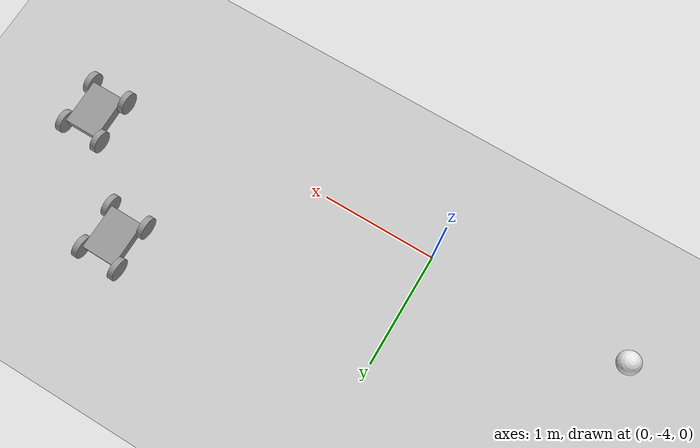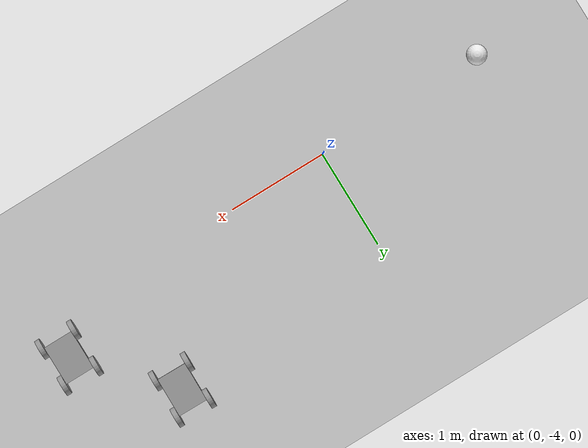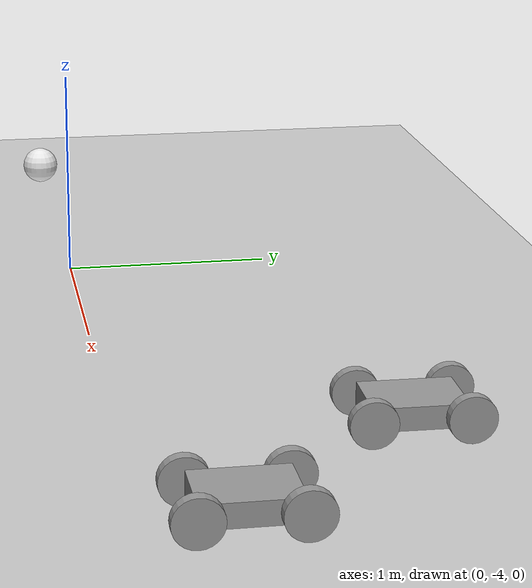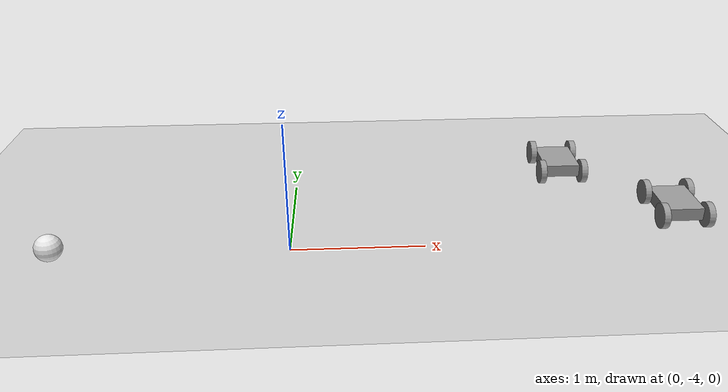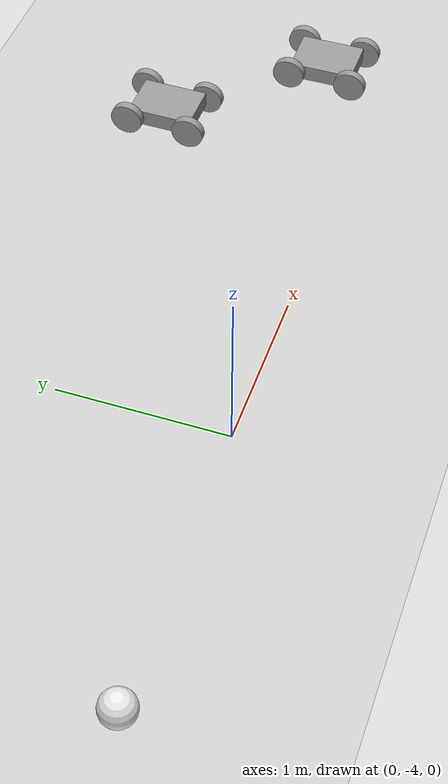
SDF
<sdf version="1.6">
 <world name="default">
  <model name="ground_plane">
   <static>1</static>
   <link name="link">
    <collision name="collision">
     <geometry><plane><normal>0 0 1</normal><size>100 100</size></plane></geometry>
     <surface>
      <contact><collide_bitmask>65535</collide_bitmask></contact>
      <friction><ode><mu>0.1</mu><mu2>0.1</mu2></ode></friction>
     </surface>
    </collision>
    <visual name="visual">
     <cast_shadows>0</cast_shadows>
     <geometry><plane><normal>0 0 1</normal><size>100 100</size></plane></geometry>
     <material>
      <script><uri>file://media/materials/scripts/gazebo.material</uri><name>Gazebo/Grey</name></script>
     </material>
    </visual>
   </link>
  </model>
  <model name="newmodel">
   <link name="link_0">
    <pose>2.27654 -2.81024 0.1 0 -0 0</pose>
    <inertial>
     <mass>1</mass>
     <inertia>
      <ixx>0.166667</ixx>
      <ixy>0</ixy>
      <ixz>0</ixz>
      <iyy>0.166667</iyy>
      <iyz>0</iyz>
      <izz>0.166667</izz>
     </inertia>
    </inertial>
    <visual name="visual">
     <geometry><box><size>0.3 0.4 0.1</size></box></geometry>
     <material>
      <lighting>1</lighting>
      <script><uri>file://media/materials/scripts/gazebo.material</uri><name>Gazebo/Grey</name></script>
      <shader type="pixel"><normal_map>__default__</normal_map></shader>
      <ambient>0.3 0.3 0.3 1</ambient>
      <diffuse>0.7 0.7 0.7 1</diffuse>
      <specular>0.01 0.01 0.01 1</specular>
      <emissive>0 0 0 1</emissive>
     </material>
    </visual>
    <collision name="collision">
     <geometry><box><size>0.3 0.4 0.1</size></box></geometry>
     <surface>
      <friction>
       <ode><mu>1</mu><mu2>1</mu2><fdir1>0 0 0</fdir1><slip1>0</slip1><slip2>0</slip2></ode>
       <torsional>
        <coefficient>1</coefficient>
        <patch_radius>0</patch_radius>
        <surface_radius>0</surface_radius>
        <use_patch_radius>1</use_patch_radius>
        <ode><slip>0</slip></ode>
       </torsional>
      </friction>
      <bounce><restitution_coefficient>0</restitution_coefficient><threshold>1e+06</threshold></bounce>
      <contact>
       <collide_without_contact>0</collide_without_contact>
       <collide_without_contact_bitmask>1</collide_without_contact_bitmask>
       <collide_bitmask>1</collide_bitmask>
       <ode>
        <soft_cfm>0</soft_cfm>
        <soft_erp>0.2</soft_erp>
        <kp>1e+13</kp>
        <kd>1</kd>
        <max_vel>0.01</max_vel>
        <min_depth>0</min_depth>
       </ode>
       <bullet>
        <split_impulse>1</split_impulse>
        <split_impulse_penetration_threshold>-0.01</split_impulse_penetration_threshold>
        <soft_cfm>0</soft_cfm>
        <soft_erp>0.2</soft_erp>
        <kp>1e+13</kp>
        <kd>1</kd>
       </bullet>
      </contact>
     </surface>
    </collision>
   </link>
   <link name="link_1">
    <pose>2.45154 -2.61024 0.1 -3.14159 1.57059 -3.14159</pose>
    <inertial>
     <mass>1</mass>
     <inertia><ixx>0.145833</ixx><ixy>0</ixy><ixz>0</ixz><iyy>0.145833</iyy><iyz>0</iyz><izz>0.125</izz></inertia>
    </inertial>
    <visual name="visual">
     <geometry><cylinder><radius>0.1</radius><length>0.05</length></cylinder></geometry>
     <material>
      <lighting>1</lighting>
      <script><uri>file://media/materials/scripts/gazebo.material</uri><name>Gazebo/Grey</name></script>
      <shader type="pixel"><normal_map>__default__</normal_map></shader>
      <ambient>0.3 0.3 0.3 1</ambient>
      <diffuse>0.7 0.7 0.7 1</diffuse>
      <specular>0.01 0.01 0.01 1</specular>
      <emissive>0 0 0 1</emissive>
     </material>
    </visual>
    <collision name="collision">
     <geometry><cylinder><radius>0.1</radius><length>0.05</length></cylinder></geometry>
     <surface>
      <friction>
       <ode><mu>1</mu><mu2>1</mu2><fdir1>0 0 0</fdir1><slip1>0</slip1><slip2>0</slip2></ode>
       <torsional>
        <coefficient>1</coefficient>
        <patch_radius>0</patch_radius>
        <surface_radius>0</surface_radius>
        <use_patch_radius>1</use_patch_radius>
        <ode><slip>0</slip></ode>
       </torsional>
      </friction>
      <bounce><restitution_coefficient>0</restitution_coefficient><threshold>1e+06</threshold></bounce>
      <contact>
       <collide_without_contact>0</collide_without_contact>
       <collide_without_contact_bitmask>1</collide_without_contact_bitmask>
       <collide_bitmask>1</collide_bitmask>
       <ode>
        <soft_cfm>0</soft_cfm>
        <soft_erp>0.2</soft_erp>
        <kp>1e+13</kp>
        <kd>1</kd>
        <max_vel>0.01</max_vel>
        <min_depth>0</min_depth>
       </ode>
       <bullet>
        <split_impulse>1</split_impulse>
        <split_impulse_penetration_threshold>-0.01</split_impulse_penetration_threshold>
        <soft_cfm>0</soft_cfm>
        <soft_erp>0.2</soft_erp>
        <kp>1e+13</kp>
        <kd>1</kd>
       </bullet>
      </contact>
     </surface>
    </collision>
   </link>
   <link name="link_1_clone">
    <pose>2.45154 -3.01024 0.1 -3.14159 1.57059 -3.14159</pose>
    <inertial>
     <mass>1</mass>
     <inertia><ixx>0.145833</ixx><ixy>0</ixy><ixz>0</ixz><iyy>0.145833</iyy><iyz>0</iyz><izz>0.125</izz></inertia>
    </inertial>
    <visual name="visual">
     <geometry><cylinder><radius>0.1</radius><length>0.05</length></cylinder></geometry>
     <material>
      <lighting>1</lighting>
      <script><uri>file://media/materials/scripts/gazebo.material</uri><name>Gazebo/Grey</name></script>
      <shader type="pixel"><normal_map>__default__</normal_map></shader>
      <ambient>0.3 0.3 0.3 1</ambient>
      <diffuse>0.7 0.7 0.7 1</diffuse>
      <specular>0.01 0.01 0.01 1</specular>
      <emissive>0 0 0 1</emissive>
     </material>
    </visual>
    <collision name="collision">
     <geometry><cylinder><radius>0.1</radius><length>0.05</length></cylinder></geometry>
     <surface>
      <friction>
       <ode><mu>0.1</mu><mu2>0.1</mu2><fdir1>0 0 0</fdir1><slip1>0</slip1><slip2>0</slip2></ode>
       <torsional>
        <coefficient>1</coefficient>
        <patch_radius>0</patch_radius>
        <surface_radius>0</surface_radius>
        <use_patch_radius>1</use_patch_radius>
        <ode><slip>0</slip></ode>
       </torsional>
      </friction>
      <bounce><restitution_coefficient>0</restitution_coefficient><threshold>1e+06</threshold></bounce>
      <contact>
       <collide_without_contact>0</collide_without_contact>
       <collide_without_contact_bitmask>1</collide_without_contact_bitmask>
       <collide_bitmask>1</collide_bitmask>
       <ode>
        <soft_cfm>0</soft_cfm>
        <soft_erp>0.2</soft_erp>
        <kp>1e+13</kp>
        <kd>1</kd>
        <max_vel>0.01</max_vel>
        <min_depth>0</min_depth>
       </ode>
       <bullet>
        <split_impulse>1</split_impulse>
        <split_impulse_penetration_threshold>-0.01</split_impulse_penetration_threshold>
        <soft_cfm>0</soft_cfm>
        <soft_erp>0.2</soft_erp>
        <kp>1e+13</kp>
        <kd>1</kd>
       </bullet>
      </contact>
     </surface>
    </collision>
   </link>
   <link name="link_1_clone_0">
    <pose>2.10154 -2.61024 0.1 -3.14159 1.57059 -3.14159</pose>
    <inertial>
     <mass>1</mass>
     <inertia><ixx>0.145833</ixx><ixy>0</ixy><ixz>0</ixz><iyy>0.145833</iyy><iyz>0</iyz><izz>0.125</izz></inertia>
    </inertial>
    <visual name="visual">
     <geometry><cylinder><radius>0.1</radius><length>0.05</length></cylinder></geometry>
     <material>
      <lighting>1</lighting>
      <script><uri>file://media/materials/scripts/gazebo.material</uri><name>Gazebo/Grey</name></script>
      <shader type="pixel"><normal_map>__default__</normal_map></shader>
      <ambient>0.3 0.3 0.3 1</ambient>
      <diffuse>0.7 0.7 0.7 1</diffuse>
      <specular>0.01 0.01 0.01 1</specular>
      <emissive>0 0 0 1</emissive>
     </material>
    </visual>
    <collision name="collision">
     <geometry><cylinder><radius>0.1</radius><length>0.05</length></cylinder></geometry>
     <surface>
      <friction>
       <ode><mu>0.1</mu><mu2>0.1</mu2><fdir1>0 0 0</fdir1><slip1>0</slip1><slip2>0</slip2></ode>
       <torsional>
        <coefficient>1</coefficient>
        <patch_radius>0</patch_radius>
        <surface_radius>0</surface_radius>
        <use_patch_radius>1</use_patch_radius>
        <ode><slip>0</slip></ode>
       </torsional>
      </friction>
      <bounce><restitution_coefficient>0</restitution_coefficient><threshold>1e+06</threshold></bounce>
      <contact>
       <collide_without_contact>0</collide_without_contact>
       <collide_without_contact_bitmask>1</collide_without_contact_bitmask>
       <collide_bitmask>1</collide_bitmask>
       <ode>
        <soft_cfm>0</soft_cfm>
        <soft_erp>0.2</soft_erp>
        <kp>1e+13</kp>
        <kd>1</kd>
        <max_vel>0.01</max_vel>
        <min_depth>0</min_depth>
       </ode>
       <bullet>
        <split_impulse>1</split_impulse>
        <split_impulse_penetration_threshold>-0.01</split_impulse_penetration_threshold>
        <soft_cfm>0</soft_cfm>
        <soft_erp>0.2</soft_erp>
        <kp>1e+13</kp>
        <kd>1</kd>
       </bullet>
      </contact>
     </surface>
    </collision>
   </link>
   <link name="link_1_clone_1">
    <pose>2.10154 -3.01024 0.1 -3.14159 1.57059 -3.14159</pose>
    <inertial>
     <mass>1</mass>
     <inertia><ixx>0.145833</ixx><ixy>0</ixy><ixz>0</ixz><iyy>0.145833</iyy><iyz>0</iyz><izz>0.125</izz></inertia>
    </inertial>
    <visual name="visual">
     <geometry><cylinder><radius>0.1</radius><length>0.05</length></cylinder></geometry>
     <material>
      <lighting>1</lighting>
      <script><uri>file://media/materials/scripts/gazebo.material</uri><name>Gazebo/Grey</name></script>
      <shader type="pixel"><normal_map>__default__</normal_map></shader>
      <ambient>0.3 0.3 0.3 1</ambient>
      <diffuse>0.7 0.7 0.7 1</diffuse>
      <specular>0.01 0.01 0.01 1</specular>
      <emissive>0 0 0 1</emissive>
     </material>
    </visual>
    <collision name="collision">
     <geometry><cylinder><radius>0.1</radius><length>0.05</length></cylinder></geometry>
     <surface>
      <friction>
       <ode><mu>0.1</mu><mu2>0.1</mu2><fdir1>0 0 0</fdir1><slip1>0</slip1><slip2>0</slip2></ode>
       <torsional>
        <coefficient>1</coefficient>
        <patch_radius>0</patch_radius>
        <surface_radius>0</surface_radius>
        <use_patch_radius>1</use_patch_radius>
        <ode><slip>0</slip></ode>
       </torsional>
      </friction>
      <bounce><restitution_coefficient>0</restitution_coefficient><threshold>1e+06</threshold></bounce>
      <contact>
       <collide_without_contact>0</collide_without_contact>
       <collide_without_contact_bitmask>1</collide_without_contact_bitmask>
       <collide_bitmask>1</collide_bitmask>
       <ode>
        <soft_cfm>0</soft_cfm>
        <soft_erp>0.2</soft_erp>
        <kp>1e+13</kp>
        <kd>1</kd>
        <max_vel>0.01</max_vel>
        <min_depth>0</min_depth>
       </ode>
       <bullet>
        <split_impulse>1</split_impulse>
        <split_impulse_penetration_threshold>-0.01</split_impulse_penetration_threshold>
        <soft_cfm>0</soft_cfm>
        <soft_erp>0.2</soft_erp>
        <kp>1e+13</kp>
        <kd>1</kd>
       </bullet>
      </contact>
     </surface>
    </collision>
   </link>
   <joint name="link_0_JOINT_0" type="revolute">
    <parent>link_0</parent>
    <child>link_1</child>
    <axis>
     <xyz>1 0 0</xyz>
     <use_parent_model_frame>0</use_parent_model_frame>
     <limit>
      <lower>-1.79769e+308</lower>
      <upper>1.79769e+308</upper>
      <effort>-1</effort>
      <velocity>-1</velocity>
     </limit>
     <dynamics>
      <spring_reference>0</spring_reference>
      <spring_stiffness>0</spring_stiffness>
      <damping>0</damping>
      <friction>0</friction>
     </dynamics>
    </axis>
    <physics>
     <ode><limit><cfm>0</cfm><erp>0.2</erp></limit><suspension><cfm>0</cfm><erp>0.2</erp></suspension></ode>
    </physics>
   </joint>
   <joint name="link_0_JOINT_1" type="revolute">
    <parent>link_0</parent>
    <child>link_1_clone</child>
    <axis>
     <xyz>1 0 0</xyz>
     <use_parent_model_frame>0</use_parent_model_frame>
     <limit>
      <lower>-1.79769e+308</lower>
      <upper>1.79769e+308</upper>
      <effort>-1</effort>
      <velocity>-1</velocity>
     </limit>
     <dynamics>
      <spring_reference>0</spring_reference>
      <spring_stiffness>0</spring_stiffness>
      <damping>0</damping>
     </dynamics>
    </axis>
    <physics>
     <ode><limit><cfm>0</cfm><erp>0.2</erp></limit><suspension><cfm>0</cfm><erp>0.2</erp></suspension></ode>
    </physics>
   </joint>
   <joint name="link_0_JOINT_2" type="revolute">
    <parent>link_0</parent>
    <child>link_1_clone_0</child>
    <axis>
     <xyz>1 0 0</xyz>
     <use_parent_model_frame>0</use_parent_model_frame>
     <limit>
      <lower>-1.79769e+308</lower>
      <upper>1.79769e+308</upper>
      <effort>-1</effort>
      <velocity>-1</velocity>
     </limit>
     <dynamics>
      <spring_reference>0</spring_reference>
      <spring_stiffness>0</spring_stiffness>
      <damping>0</damping>
     </dynamics>
    </axis>
    <physics>
     <ode><limit><cfm>0</cfm><erp>0.2</erp></limit><suspension><cfm>0</cfm><erp>0.2</erp></suspension></ode>
    </physics>
   </joint>
   <joint name="link_0_JOINT_3" type="revolute">
    <parent>link_0</parent>
    <child>link_1_clone_1</child>
    <axis>
     <xyz>1 0 0</xyz>
     <use_parent_model_frame>0</use_parent_model_frame>
     <limit>
      <lower>-1.79769e+308</lower>
      <upper>1.79769e+308</upper>
      <effort>-1</effort>
      <velocity>-1</velocity>
     </limit>
     <dynamics>
      <spring_reference>0</spring_reference>
      <spring_stiffness>0</spring_stiffness>
      <damping>0</damping>
     </dynamics>
    </axis>
    <physics>
     <ode><limit><cfm>0</cfm><erp>0.2</erp></limit><suspension><cfm>0</cfm><erp>0.2</erp></suspension></ode>
    </physics>
   </joint>
   <static>0</static>
   <pose>0.050926 0.033382 6e-06 -3e-06 5e-06 -0.014128</pose>
  </model>
  <model name="newmodel_0">
   <link name="link_0">
    <pose>2.27654 -2.81024 0.1 0 -0 0</pose>
    <inertial>
     <mass>1</mass>
     <inertia>
      <ixx>0.166667</ixx>
      <ixy>0</ixy>
      <ixz>0</ixz>
      <iyy>0.166667</iyy>
      <iyz>0</iyz>
      <izz>0.166667</izz>
     </inertia>
    </inertial>
    <visual name="visual">
     <geometry><box><size>0.3 0.4 0.1</size></box></geometry>
     <material>
      <lighting>1</lighting>
      <script><uri>file://media/materials/scripts/gazebo.material</uri><name>Gazebo/Grey</name></script>
      <shader type="pixel"><normal_map>__default__</normal_map></shader>
      <ambient>0.3 0.3 0.3 1</ambient>
      <diffuse>0.7 0.7 0.7 1</diffuse>
      <specular>0.01 0.01 0.01 1</specular>
      <emissive>0 0 0 1</emissive>
     </material>
    </visual>
    <collision name="collision">
     <geometry><box><size>0.3 0.4 0.1</size></box></geometry>
     <surface>
      <friction>
       <ode><mu>0.1</mu><mu2>0.1</mu2><fdir1>0 0 0</fdir1><slip1>0</slip1><slip2>0</slip2></ode>
       <torsional>
        <coefficient>1</coefficient>
        <patch_radius>0</patch_radius>
        <surface_radius>0</surface_radius>
        <use_patch_radius>1</use_patch_radius>
        <ode><slip>0</slip></ode>
       </torsional>
      </friction>
      <bounce><restitution_coefficient>0</restitution_coefficient><threshold>1e+06</threshold></bounce>
      <contact>
       <collide_without_contact>0</collide_without_contact>
       <collide_without_contact_bitmask>1</collide_without_contact_bitmask>
       <collide_bitmask>1</collide_bitmask>
       <ode>
        <soft_cfm>0</soft_cfm>
        <soft_erp>0.2</soft_erp>
        <kp>1e+13</kp>
        <kd>1</kd>
        <max_vel>0.01</max_vel>
        <min_depth>0</min_depth>
       </ode>
       <bullet>
        <split_impulse>1</split_impulse>
        <split_impulse_penetration_threshold>-0.01</split_impulse_penetration_threshold>
        <soft_cfm>0</soft_cfm>
        <soft_erp>0.2</soft_erp>
        <kp>1e+13</kp>
        <kd>1</kd>
       </bullet>
      </contact>
     </surface>
    </collision>
   </link>
   <link name="link_1">
    <pose>2.45154 -2.61024 0.1 -3.14159 1.57059 -3.14159</pose>
    <inertial>
     <mass>1</mass>
     <inertia><ixx>0.145833</ixx><ixy>0</ixy><ixz>0</ixz><iyy>0.145833</iyy><iyz>0</iyz><izz>0.125</izz></inertia>
    </inertial>
    <visual name="visual">
     <geometry><cylinder><radius>0.1</radius><length>0.05</length></cylinder></geometry>
     <material>
      <lighting>1</lighting>
      <script><uri>file://media/materials/scripts/gazebo.material</uri><name>Gazebo/Grey</name></script>
      <shader type="pixel"><normal_map>__default__</normal_map></shader>
      <ambient>0.3 0.3 0.3 1</ambient>
      <diffuse>0.7 0.7 0.7 1</diffuse>
      <specular>0.01 0.01 0.01 1</specular>
      <emissive>0 0 0 1</emissive>
     </material>
    </visual>
    <collision name="collision">
     <geometry><cylinder><radius>0.1</radius><length>0.05</length></cylinder></geometry>
     <surface>
      <friction>
       <ode><mu>0.1</mu><mu2>0.1</mu2><fdir1>0 0 0</fdir1><slip1>0</slip1><slip2>0</slip2></ode>
       <torsional>
        <coefficient>1</coefficient>
        <patch_radius>0</patch_radius>
        <surface_radius>0</surface_radius>
        <use_patch_radius>1</use_patch_radius>
        <ode><slip>0</slip></ode>
       </torsional>
      </friction>
      <bounce><restitution_coefficient>0</restitution_coefficient><threshold>1e+06</threshold></bounce>
      <contact>
       <collide_without_contact>0</collide_without_contact>
       <collide_without_contact_bitmask>1</collide_without_contact_bitmask>
       <collide_bitmask>1</collide_bitmask>
       <ode>
        <soft_cfm>0</soft_cfm>
        <soft_erp>0.2</soft_erp>
        <kp>1e+13</kp>
        <kd>1</kd>
        <max_vel>0.01</max_vel>
        <min_depth>0</min_depth>
       </ode>
       <bullet>
        <split_impulse>1</split_impulse>
        <split_impulse_penetration_threshold>-0.01</split_impulse_penetration_threshold>
        <soft_cfm>0</soft_cfm>
        <soft_erp>0.2</soft_erp>
        <kp>1e+13</kp>
        <kd>1</kd>
       </bullet>
      </contact>
     </surface>
    </collision>
   </link>
   <link name="link_1_clone">
    <pose>2.45154 -3.01024 0.1 -3.14159 1.57059 -3.14159</pose>
    <inertial>
     <mass>1</mass>
     <inertia><ixx>0.145833</ixx><ixy>0</ixy><ixz>0</ixz><iyy>0.145833</iyy><iyz>0</iyz><izz>0.125</izz></inertia>
    </inertial>
    <visual name="visual">
     <geometry><cylinder><radius>0.1</radius><length>0.05</length></cylinder></geometry>
     <material>
      <lighting>1</lighting>
      <script><uri>file://media/materials/scripts/gazebo.material</uri><name>Gazebo/Grey</name></script>
      <shader type="pixel"><normal_map>__default__</normal_map></shader>
      <ambient>0.3 0.3 0.3 1</ambient>
      <diffuse>0.7 0.7 0.7 1</diffuse>
      <specular>0.01 0.01 0.01 1</specular>
      <emissive>0 0 0 1</emissive>
     </material>
    </visual>
    <collision name="collision">
     <geometry><cylinder><radius>0.1</radius><length>0.05</length></cylinder></geometry>
     <surface>
      <friction>
       <ode><mu>0.1</mu><mu2>0.1</mu2><fdir1>0 0 0</fdir1><slip1>0</slip1><slip2>0</slip2></ode>
       <torsional>
        <coefficient>1</coefficient>
        <patch_radius>0</patch_radius>
        <surface_radius>0</surface_radius>
        <use_patch_radius>1</use_patch_radius>
        <ode><slip>0</slip></ode>
       </torsional>
      </friction>
      <bounce><restitution_coefficient>0</restitution_coefficient><threshold>1e+06</threshold></bounce>
      <contact>
       <collide_without_contact>0</collide_without_contact>
       <collide_without_contact_bitmask>1</collide_without_contact_bitmask>
       <collide_bitmask>1</collide_bitmask>
       <ode>
        <soft_cfm>0</soft_cfm>
        <soft_erp>0.2</soft_erp>
        <kp>1e+13</kp>
        <kd>1</kd>
        <max_vel>0.01</max_vel>
        <min_depth>0</min_depth>
       </ode>
       <bullet>
        <split_impulse>1</split_impulse>
        <split_impulse_penetration_threshold>-0.01</split_impulse_penetration_threshold>
        <soft_cfm>0</soft_cfm>
        <soft_erp>0.2</soft_erp>
        <kp>1e+13</kp>
        <kd>1</kd>
       </bullet>
      </contact>
     </surface>
    </collision>
   </link>
   <link name="link_1_clone_0">
    <pose>2.10154 -2.61024 0.1 -3.14159 1.57059 -3.14159</pose>
    <inertial>
     <mass>1</mass>
     <inertia><ixx>0.145833</ixx><ixy>0</ixy><ixz>0</ixz><iyy>0.145833</iyy><iyz>0</iyz><izz>0.125</izz></inertia>
    </inertial>
    <visual name="visual">
     <geometry><cylinder><radius>0.1</radius><length>0.05</length></cylinder></geometry>
     <material>
      <lighting>1</lighting>
      <script><uri>file://media/materials/scripts/gazebo.material</uri><name>Gazebo/Grey</name></script>
      <shader type="pixel"><normal_map>__default__</normal_map></shader>
      <ambient>0.3 0.3 0.3 1</ambient>
      <diffuse>0.7 0.7 0.7 1</diffuse>
      <specular>0.01 0.01 0.01 1</specular>
      <emissive>0 0 0 1</emissive>
     </material>
    </visual>
    <collision name="collision">
     <geometry><cylinder><radius>0.1</radius><length>0.05</length></cylinder></geometry>
     <surface>
      <friction>
       <ode><mu>0.1</mu><mu2>0.1</mu2><fdir1>0 0 0</fdir1><slip1>0</slip1><slip2>0</slip2></ode>
       <torsional>
        <coefficient>1</coefficient>
        <patch_radius>0</patch_radius>
        <surface_radius>0</surface_radius>
        <use_patch_radius>1</use_patch_radius>
        <ode><slip>0</slip></ode>
       </torsional>
      </friction>
      <bounce><restitution_coefficient>0</restitution_coefficient><threshold>1e+06</threshold></bounce>
      <contact>
       <collide_without_contact>0</collide_without_contact>
       <collide_without_contact_bitmask>1</collide_without_contact_bitmask>
       <collide_bitmask>1</collide_bitmask>
       <ode>
        <soft_cfm>0</soft_cfm>
        <soft_erp>0.2</soft_erp>
        <kp>1e+13</kp>
        <kd>1</kd>
        <max_vel>0.01</max_vel>
        <min_depth>0</min_depth>
       </ode>
       <bullet>
        <split_impulse>1</split_impulse>
        <split_impulse_penetration_threshold>-0.01</split_impulse_penetration_threshold>
        <soft_cfm>0</soft_cfm>
        <soft_erp>0.2</soft_erp>
        <kp>1e+13</kp>
        <kd>1</kd>
       </bullet>
      </contact>
     </surface>
    </collision>
   </link>
   <link name="link_1_clone_1">
    <pose>2.10154 -3.01024 0.1 -3.14159 1.57059 -3.14159</pose>
    <inertial>
     <mass>1</mass>
     <inertia><ixx>0.145833</ixx><ixy>0</ixy><ixz>0</ixz><iyy>0.145833</iyy><iyz>0</iyz><izz>0.125</izz></inertia>
    </inertial>
    <visual name="visual">
     <geometry><cylinder><radius>0.1</radius><length>0.05</length></cylinder></geometry>
     <material>
      <lighting>1</lighting>
      <script><uri>file://media/materials/scripts/gazebo.material</uri><name>Gazebo/Grey</name></script>
      <shader type="pixel"><normal_map>__default__</normal_map></shader>
      <ambient>0.3 0.3 0.3 1</ambient>
      <diffuse>0.7 0.7 0.7 1</diffuse>
      <specular>0.01 0.01 0.01 1</specular>
      <emissive>0 0 0 1</emissive>
     </material>
    </visual>
    <collision name="collision">
     <geometry><cylinder><radius>0.1</radius><length>0.05</length></cylinder></geometry>
     <surface>
      <friction>
       <ode><mu>0.1</mu><mu2>0.1</mu2><fdir1>0 0 0</fdir1><slip1>0</slip1><slip2>0</slip2></ode>
       <torsional>
        <coefficient>1</coefficient>
        <patch_radius>0</patch_radius>
        <surface_radius>0</surface_radius>
        <use_patch_radius>1</use_patch_radius>
        <ode><slip>0</slip></ode>
       </torsional>
      </friction>
      <bounce><restitution_coefficient>0</restitution_coefficient><threshold>1e+06</threshold></bounce>
      <contact>
       <collide_without_contact>0</collide_without_contact>
       <collide_without_contact_bitmask>1</collide_without_contact_bitmask>
       <collide_bitmask>1</collide_bitmask>
       <ode>
        <soft_cfm>0</soft_cfm>
        <soft_erp>0.2</soft_erp>
        <kp>1e+13</kp>
        <kd>1</kd>
        <max_vel>0.01</max_vel>
        <min_depth>0</min_depth>
       </ode>
       <bullet>
        <split_impulse>1</split_impulse>
        <split_impulse_penetration_threshold>-0.01</split_impulse_penetration_threshold>
        <soft_cfm>0</soft_cfm>
        <soft_erp>0.2</soft_erp>
        <kp>1e+13</kp>
        <kd>1</kd>
       </bullet>
      </contact>
     </surface>
    </collision>
   </link>
   <joint name="link_0_JOINT_0" type="revolute">
    <parent>link_0</parent>
    <child>link_1</child>
    <axis>
     <xyz>1 0 0</xyz>
     <use_parent_model_frame>0</use_parent_model_frame>
     <limit>
      <lower>-1.79769e+308</lower>
      <upper>1.79769e+308</upper>
      <effort>-1</effort>
      <velocity>-1</velocity>
     </limit>
     <dynamics>
      <spring_reference>0</spring_reference>
      <spring_stiffness>0</spring_stiffness>
      <damping>0</damping>
      <friction>0</friction>
     </dynamics>
    </axis>
    <physics>
     <ode><limit><cfm>0</cfm><erp>0.2</erp></limit><suspension><cfm>0</cfm><erp>0.2</erp></suspension></ode>
    </physics>
   </joint>
   <joint name="link_0_JOINT_1" type="revolute">
    <parent>link_0</parent>
    <child>link_1_clone</child>
    <axis>
     <xyz>1 0 0</xyz>
     <use_parent_model_frame>0</use_parent_model_frame>
     <limit>
      <lower>-1.79769e+308</lower>
      <upper>1.79769e+308</upper>
      <effort>-1</effort>
      <velocity>-1</velocity>
     </limit>
     <dynamics>
      <spring_reference>0</spring_reference>
      <spring_stiffness>0</spring_stiffness>
      <damping>0</damping>
     </dynamics>
    </axis>
    <physics>
     <ode><limit><cfm>0</cfm><erp>0.2</erp></limit><suspension><cfm>0</cfm><erp>0.2</erp></suspension></ode>
    </physics>
   </joint>
   <joint name="link_0_JOINT_2" type="revolute">
    <parent>link_0</parent>
    <child>link_1_clone_0</child>
    <axis>
     <xyz>1 0 0</xyz>
     <use_parent_model_frame>0</use_parent_model_frame>
     <limit>
      <lower>-1.79769e+308</lower>
      <upper>1.79769e+308</upper>
      <effort>-1</effort>
      <velocity>-1</velocity>
     </limit>
     <dynamics>
      <spring_reference>0</spring_reference>
      <spring_stiffness>0</spring_stiffness>
      <damping>0</damping>
     </dynamics>
    </axis>
    <physics>
     <ode><limit><cfm>0</cfm><erp>0.2</erp></limit><suspension><cfm>0</cfm><erp>0.2</erp></suspension></ode>
    </physics>
   </joint>
   <joint name="link_0_JOINT_3" type="revolute">
    <parent>link_0</parent>
    <child>link_1_clone_1</child>
    <axis>
     <xyz>1 0 0</xyz>
     <use_parent_model_frame>0</use_parent_model_frame>
     <limit>
      <lower>-1.79769e+308</lower>
      <upper>1.79769e+308</upper>
      <effort>-1</effort>
      <velocity>-1</velocity>
     </limit>
     <dynamics>
      <spring_reference>0</spring_reference>
      <spring_stiffness>0</spring_stiffness>
      <damping>0</damping>
     </dynamics>
    </axis>
    <physics>
     <ode><limit><cfm>0</cfm><erp>0.2</erp></limit><suspension><cfm>0</cfm><erp>0.2</erp></suspension></ode>
    </physics>
   </joint>
   <static>0</static>
   <pose>0.760618 -0.812935 1.7e-05 3e-06 2e-06 -0.00044</pose>
  </model>
  <model name="my_ball">
   <link name="link_0">
    <inertial>
     <mass>1</mass>
     <inertia><ixx>0.1</ixx><ixy>0</ixy><ixz>0</ixz><iyy>0.1</iyy><iyz>0</iyz><izz>0.1</izz></inertia>
    </inertial>
    <visual name="visual">
     <geometry><sphere><radius>0.1</radius></sphere></geometry>
     <material>
      <lighting>1</lighting>
      <script><uri>file://media/materials/scripts/gazebo.material</uri><name>Gazebo/White</name></script>
      <shader type="pixel"><normal_map>__default__</normal_map></shader>
      <ambient>1 1 1 1</ambient>
      <diffuse>1 1 1 1</diffuse>
      <specular>1 1 1 1</specular>
      <emissive>1 1 1 1</emissive>
     </material>
    </visual>
    <collision name="collision">
     <geometry><sphere><radius>0.1</radius></sphere></geometry>
     <surface>
      <friction>
       <ode><mu>0.1</mu><mu2>0.1</mu2><fdir1>0 0 0</fdir1><slip1>0</slip1><slip2>0</slip2></ode>
       <torsional>
        <coefficient>1</coefficient>
        <patch_radius>0</patch_radius>
        <surface_radius>0</surface_radius>
        <use_patch_radius>1</use_patch_radius>
        <ode><slip>0</slip></ode>
       </torsional>
      </friction>
      <bounce><restitution_coefficient>0</restitution_coefficient><threshold>1e+06</threshold></bounce>
      <contact>
       <collide_without_contact>0</collide_without_contact>
       <collide_without_contact_bitmask>1</collide_without_contact_bitmask>
       <collide_bitmask>1</collide_bitmask>
       <ode>
        <soft_cfm>0</soft_cfm>
        <soft_erp>0.2</soft_erp>
        <kp>1e+13</kp>
        <kd>1</kd>
        <max_vel>0.01</max_vel>
        <min_depth>0</min_depth>
       </ode>
       <bullet>
        <split_impulse>1</split_impulse>
        <split_impulse_penetration_threshold>-0.01</split_impulse_penetration_threshold>
        <soft_cfm>0</soft_cfm>
        <soft_erp>0.2</soft_erp>
        <kp>1e+13</kp>
        <kd>1</kd>
       </bullet>
      </contact>
     </surface>
    </collision>
   </link>
   <static>0</static>
   <pose>-1.72662 -4.03452 0.1 0 -0 0</pose>
  </model>
 </world>
</sdf>
